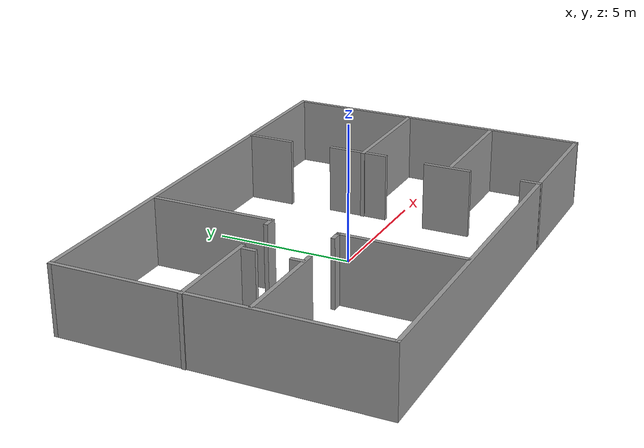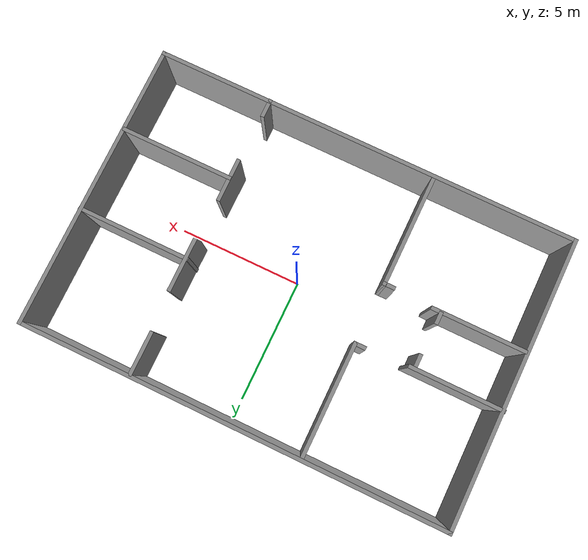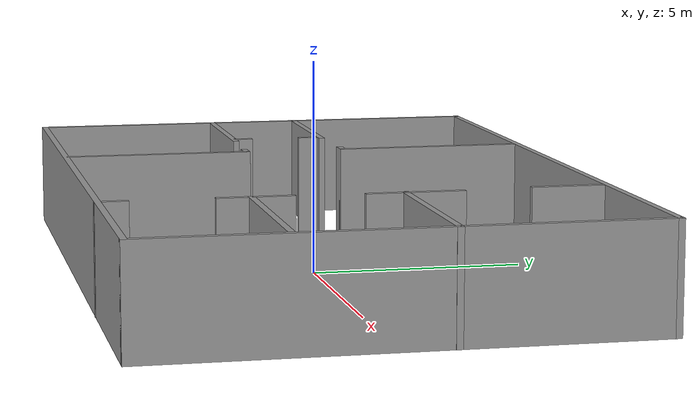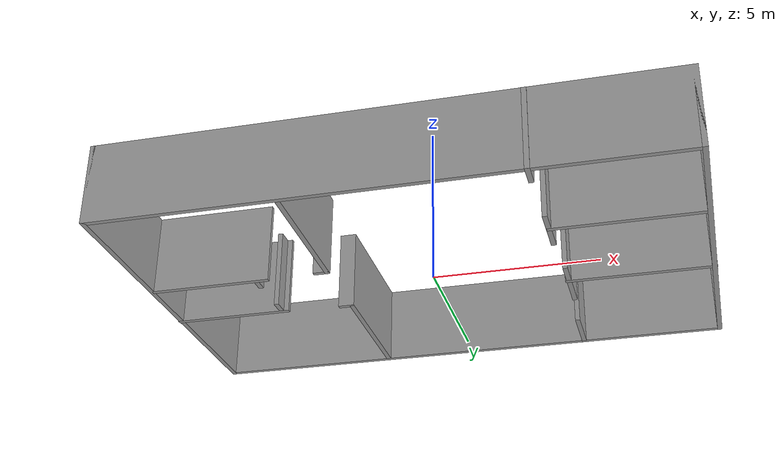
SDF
<?xml version='1.0'?>
<sdf version='1.7'>
  <model name='laber_2'>
    <pose>-0.21966 0.180341 0 0 -0 0</pose>
    <link name='Wall_0'>
      <collision name='Wall_0_Collision'>
        <geometry>
          <box>
            <size>11.5 0.15 2.5</size>
          </box>
        </geometry>
        <pose>0 0 1.25 0 -0 0</pose>
      </collision>
      <visual name='Wall_0_Visual'>
        <pose>0 0 1.25 0 -0 0</pose>
        <geometry>
          <box>
            <size>11.5 0.15 2.5</size>
          </box>
        </geometry>
        <material>
          <script>
            <uri>file://media/materials/scripts/gazebo.material</uri>
            <name>Gazebo/Grey</name>
          </script>
          <ambient>1 1 1 1</ambient>
        </material>
        <meta>
          <layer>0</layer>
        </meta>
      </visual>
      <pose>-8.41429 0.0039 0 0 -0 -1.5708</pose>
    </link>
    <link name='Wall_1'>
      <collision name='Wall_1_Collision'>
        <geometry>
          <box>
            <size>17 0.15 2.5</size>
          </box>
        </geometry>
        <pose>0 0 1.25 0 -0 0</pose>
      </collision>
      <visual name='Wall_1_Visual'>
        <pose>0 0 1.25 0 -0 0</pose>
        <geometry>
          <box>
            <size>17 0.15 2.5</size>
          </box>
        </geometry>
        <material>
          <script>
            <uri>file://media/materials/scripts/gazebo.material</uri>
            <name>Gazebo/Grey</name>
          </script>
          <ambient>1 1 1 1</ambient>
        </material>
        <meta>
          <layer>0</layer>
        </meta>
      </visual>
      <pose>0.010707 -5.6711 0 0 -0 0</pose>
    </link>
    <link name='Wall_10'>
      <collision name='Wall_10_Collision'>
        <geometry>
          <box>
            <size>0.5 0.15 2.5</size>
          </box>
        </geometry>
        <pose>0 0 1.25 0 -0 0</pose>
      </collision>
      <visual name='Wall_10_Visual'>
        <pose>0 0 1.25 0 -0 0</pose>
        <geometry>
          <box>
            <size>0.5 0.15 2.5</size>
          </box>
        </geometry>
        <material>
          <script>
            <uri>file://media/materials/scripts/gazebo.material</uri>
            <name>Gazebo/Grey</name>
          </script>
          <ambient>1 1 1 1</ambient>
        </material>
        <meta>
          <layer>0</layer>
        </meta>
      </visual>
      <pose>-5.0517 -0.936051 0 0 -0 1.5708</pose>
    </link>
    <link name='Wall_19'>
      <collision name='Wall_19_Collision'>
        <geometry>
          <box>
            <size>0.5 0.15 2.5</size>
          </box>
        </geometry>
        <pose>0 0 1.25 0 -0 0</pose>
      </collision>
      <visual name='Wall_19_Visual'>
        <pose>0 0 1.25 0 -0 0</pose>
        <geometry>
          <box>
            <size>0.5 0.15 2.5</size>
          </box>
        </geometry>
        <material>
          <script>
            <uri>file://media/materials/scripts/gazebo.material</uri>
            <name>Gazebo/Grey</name>
          </script>
          <ambient>1 1 1 1</ambient>
        </material>
        <meta>
          <layer>0</layer>
        </meta>
      </visual>
      <pose>-5.00596 0.760826 0 0 -0 -1.5708</pose>
    </link>
    <link name='Wall_2'>
      <collision name='Wall_2_Collision'>
        <geometry>
          <box>
            <size>11.5 0.15 2.5</size>
          </box>
        </geometry>
        <pose>0 0 1.25 0 -0 0</pose>
      </collision>
      <visual name='Wall_2_Visual'>
        <pose>0 0 1.25 0 -0 0</pose>
        <geometry>
          <box>
            <size>11.5 0.15 2.5</size>
          </box>
        </geometry>
        <material>
          <script>
            <uri>file://media/materials/scripts/gazebo.material</uri>
            <name>Gazebo/Grey</name>
          </script>
          <ambient>1 1 1 1</ambient>
        </material>
        <meta>
          <layer>0</layer>
        </meta>
      </visual>
      <pose>8.43571 0.0039 0 0 -0 1.5708</pose>
    </link>
    <link name='Wall_21'>
      <collision name='Wall_21_Collision'>
        <geometry>
          <box>
            <size>4.5 0.15 2.5</size>
          </box>
        </geometry>
        <pose>0 0 1.25 0 -0 0</pose>
      </collision>
      <visual name='Wall_21_Visual'>
        <pose>0 0 1.25 0 -0 0</pose>
        <geometry>
          <box>
            <size>4.5 0.15 2.5</size>
          </box>
        </geometry>
        <material>
          <script>
            <uri>file://media/materials/scripts/gazebo.material</uri>
            <name>Gazebo/Grey</name>
          </script>
          <ambient>1 1 1 1</ambient>
        </material>
        <meta>
          <layer>0</layer>
        </meta>
      </visual>
      <pose>-2.73259 3.35863 0 0 -0 1.5708</pose>
    </link>
    <link name='Wall_23'>
      <collision name='Wall_23_Collision'>
        <geometry>
          <box>
            <size>4.5 0.15 2.5</size>
          </box>
        </geometry>
        <pose>0 0 1.25 0 -0 0</pose>
      </collision>
      <visual name='Wall_23_Visual'>
        <pose>0 0 1.25 0 -0 0</pose>
        <geometry>
          <box>
            <size>4.5 0.15 2.5</size>
          </box>
        </geometry>
        <material>
          <script>
            <uri>file://media/materials/scripts/gazebo.material</uri>
            <name>Gazebo/Grey</name>
          </script>
          <ambient>1 1 1 1</ambient>
        </material>
        <meta>
          <layer>0</layer>
        </meta>
      </visual>
      <pose>-2.78549 -3.40687 0 0 -0 -1.5708</pose>
    </link>
    <link name='Wall_25'>
      <collision name='Wall_25_Collision'>
        <geometry>
          <box>
            <size>0.5 0.15 2.5</size>
          </box>
        </geometry>
        <pose>0 0 1.25 0 -0 0</pose>
      </collision>
      <visual name='Wall_25_Visual'>
        <pose>0 0 1.25 0 -0 0</pose>
        <geometry>
          <box>
            <size>0.5 0.15 2.5</size>
          </box>
        </geometry>
        <material>
          <script>
            <uri>file://media/materials/scripts/gazebo.material</uri>
            <name>Gazebo/Grey</name>
          </script>
          <ambient>1 1 1 1</ambient>
        </material>
        <meta>
          <layer>0</layer>
        </meta>
      </visual>
      <pose>-2.90759 1.18363 0 0 -0 3.14159</pose>
    </link>
    <link name='Wall_27'>
      <collision name='Wall_27_Collision'>
        <geometry>
          <box>
            <size>0.5 0.15 2.5</size>
          </box>
        </geometry>
        <pose>0 0 1.25 0 -0 0</pose>
      </collision>
      <visual name='Wall_27_Visual'>
        <pose>0 0 1.25 0 -0 0</pose>
        <geometry>
          <box>
            <size>0.5 0.15 2.5</size>
          </box>
        </geometry>
        <material>
          <script>
            <uri>file://media/materials/scripts/gazebo.material</uri>
            <name>Gazebo/Grey</name>
          </script>
          <ambient>1 1 1 1</ambient>
        </material>
        <meta>
          <layer>0</layer>
        </meta>
      </visual>
      <pose>-2.96049 -1.23187 0 0 -0 3.14159</pose>
    </link>
    <link name='Wall_29'>
      <collision name='Wall_29_Collision'>
        <geometry>
          <box>
            <size>0.75 0.15 2.5</size>
          </box>
        </geometry>
        <pose>0 0 1.25 0 -0 0</pose>
      </collision>
      <visual name='Wall_29_Visual'>
        <pose>0 0 1.25 0 -0 0</pose>
        <geometry>
          <box>
            <size>0.75 0.15 2.5</size>
          </box>
        </geometry>
        <material>
          <script>
            <uri>file://media/materials/scripts/gazebo.material</uri>
            <name>Gazebo/Grey</name>
          </script>
          <ambient>1 1 1 1</ambient>
        </material>
        <meta>
          <layer>0</layer>
        </meta>
      </visual>
      <pose>3.97515 -5.3789 0 0 -0 1.5708</pose>
    </link>
    <link name='Wall_3'>
      <collision name='Wall_3_Collision'>
        <geometry>
          <box>
            <size>17 0.15 2.5</size>
          </box>
        </geometry>
        <pose>0 0 1.25 0 -0 0</pose>
      </collision>
      <visual name='Wall_3_Visual'>
        <pose>0 0 1.25 0 -0 0</pose>
        <geometry>
          <box>
            <size>17 0.15 2.5</size>
          </box>
        </geometry>
        <material>
          <script>
            <uri>file://media/materials/scripts/gazebo.material</uri>
            <name>Gazebo/Grey</name>
          </script>
          <ambient>1 1 1 1</ambient>
        </material>
        <meta>
          <layer>0</layer>
        </meta>
      </visual>
      <pose>0.010707 5.6789 0 0 -0 3.14159</pose>
    </link>
    <link name='Wall_31'>
      <collision name='Wall_31_Collision'>
        <geometry>
          <box>
            <size>1.75 0.15 2.5</size>
          </box>
        </geometry>
        <pose>0 0 1.25 0 -0 0</pose>
      </collision>
      <visual name='Wall_31_Visual'>
        <pose>0 0 1.25 0 -0 0</pose>
        <geometry>
          <box>
            <size>1.75 0.15 2.5</size>
          </box>
        </geometry>
        <material>
          <script>
            <uri>file://media/materials/scripts/gazebo.material</uri>
            <name>Gazebo/Grey</name>
          </script>
          <ambient>1 1 1 1</ambient>
        </material>
        <meta>
          <layer>0</layer>
        </meta>
      </visual>
      <pose>4.00993 4.79066 0 0 -0 -1.5708</pose>
    </link>
    <link name='Wall_33'>
      <collision name='Wall_33_Collision'>
        <geometry>
          <box>
            <size>4.5 0.15 2.5</size>
          </box>
        </geometry>
        <pose>0 0 1.25 0 -0 0</pose>
      </collision>
      <visual name='Wall_33_Visual'>
        <pose>0 0 1.25 0 -0 0</pose>
        <geometry>
          <box>
            <size>4.5 0.15 2.5</size>
          </box>
        </geometry>
        <material>
          <script>
            <uri>file://media/materials/scripts/gazebo.material</uri>
            <name>Gazebo/Grey</name>
          </script>
          <ambient>1 1 1 1</ambient>
        </material>
        <meta>
          <layer>0</layer>
        </meta>
      </visual>
      <pose>6.26971 1.03414 0 0 -0 3.14159</pose>
    </link>
    <link name='Wall_35'>
      <collision name='Wall_35_Collision'>
        <geometry>
          <box>
            <size>2.25 0.15 2.5</size>
          </box>
        </geometry>
        <pose>0 0 1.25 0 -0 0</pose>
      </collision>
      <visual name='Wall_35_Visual'>
        <pose>0 0 1.25 0 -0 0</pose>
        <geometry>
          <box>
            <size>2.25 0.15 2.5</size>
          </box>
        </geometry>
        <material>
          <script>
            <uri>file://media/materials/scripts/gazebo.material</uri>
            <name>Gazebo/Grey</name>
          </script>
          <ambient>1 1 1 1</ambient>
        </material>
        <meta>
          <layer>0</layer>
        </meta>
      </visual>
      <pose>4.13167 1.25371 0 0 -0 -1.5708</pose>
    </link>
    <link name='Wall_37'>
      <collision name='Wall_37_Collision'>
        <geometry>
          <box>
            <size>4.5 0.15 2.5</size>
          </box>
        </geometry>
        <pose>0 0 1.25 0 -0 0</pose>
      </collision>
      <visual name='Wall_37_Visual'>
        <pose>0 0 1.25 0 -0 0</pose>
        <geometry>
          <box>
            <size>4.5 0.15 2.5</size>
          </box>
        </geometry>
        <material>
          <script>
            <uri>file://media/materials/scripts/gazebo.material</uri>
            <name>Gazebo/Grey</name>
          </script>
          <ambient>1 1 1 1</ambient>
        </material>
        <meta>
          <layer>0</layer>
        </meta>
      </visual>
      <pose>6.21603 -2.35716 0 0 -0 3.14159</pose>
    </link>
    <link name='Wall_39'>
      <collision name='Wall_39_Collision'>
        <geometry>
          <box>
            <size>1.75 0.15 2.5</size>
          </box>
        </geometry>
        <pose>0 0 1.25 0 -0 0</pose>
      </collision>
      <visual name='Wall_39_Visual'>
        <pose>0 0 1.25 0 -0 0</pose>
        <geometry>
          <box>
            <size>1.75 0.15 2.5</size>
          </box>
        </geometry>
        <material>
          <script>
            <uri>file://media/materials/scripts/gazebo.material</uri>
            <name>Gazebo/Grey</name>
          </script>
          <ambient>1 1 1 1</ambient>
        </material>
        <meta>
          <layer>0</layer>
        </meta>
      </visual>
      <pose>4.02732 -2.2702 0 0 -0 -1.5708</pose>
    </link>
    <link name='Wall_5'>
      <collision name='Wall_5_Collision'>
        <geometry>
          <box>
            <size>3.75 0.15 2.5</size>
          </box>
        </geometry>
        <pose>0 0 1.25 0 -0 0</pose>
      </collision>
      <visual name='Wall_5_Visual'>
        <pose>0 0 1.25 0 -0 0</pose>
        <geometry>
          <box>
            <size>3.75 0.15 2.5</size>
          </box>
        </geometry>
        <material>
          <script>
            <uri>file://media/materials/scripts/gazebo.material</uri>
            <name>Gazebo/Grey</name>
          </script>
          <ambient>1 1 1 1</ambient>
        </material>
        <meta>
          <layer>0</layer>
        </meta>
      </visual>
      <pose>-6.64471 1.08586 0 0 -0 0</pose>
    </link>
    <link name='Wall_7'>
      <collision name='Wall_7_Collision'>
        <geometry>
          <box>
            <size>3.75 0.15 2.5</size>
          </box>
        </geometry>
        <pose>0 0 1.25 0 -0 0</pose>
      </collision>
      <visual name='Wall_7_Visual'>
        <pose>0 0 1.25 0 -0 0</pose>
        <geometry>
          <box>
            <size>3.75 0.15 2.5</size>
          </box>
        </geometry>
        <material>
          <script>
            <uri>file://media/materials/scripts/gazebo.material</uri>
            <name>Gazebo/Grey</name>
          </script>
          <ambient>1 1 1 1</ambient>
        </material>
        <meta>
          <layer>0</layer>
        </meta>
      </visual>
      <pose>-6.52304 -1.16504 0 0 -0 0</pose>
    </link>
    <static>1</static>
  </model>
</sdf>
